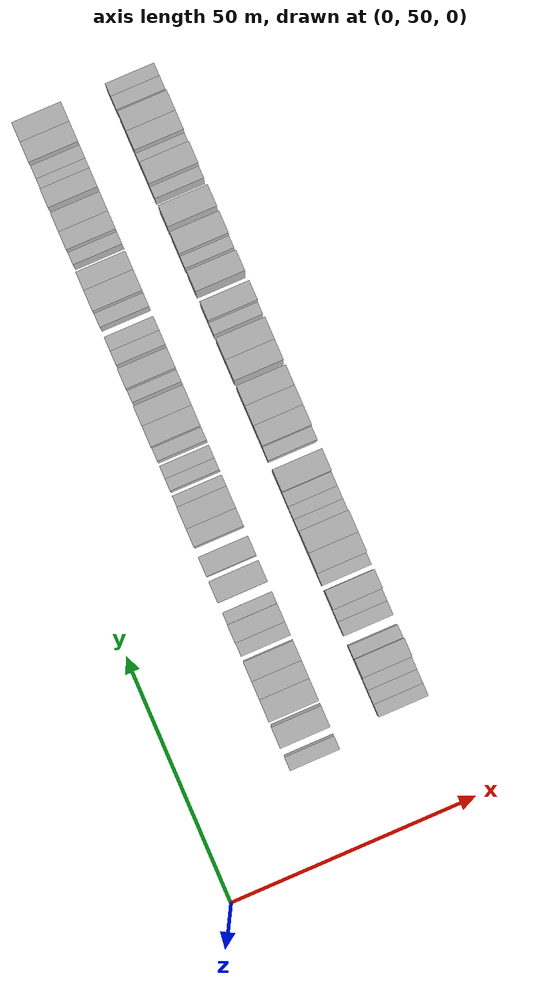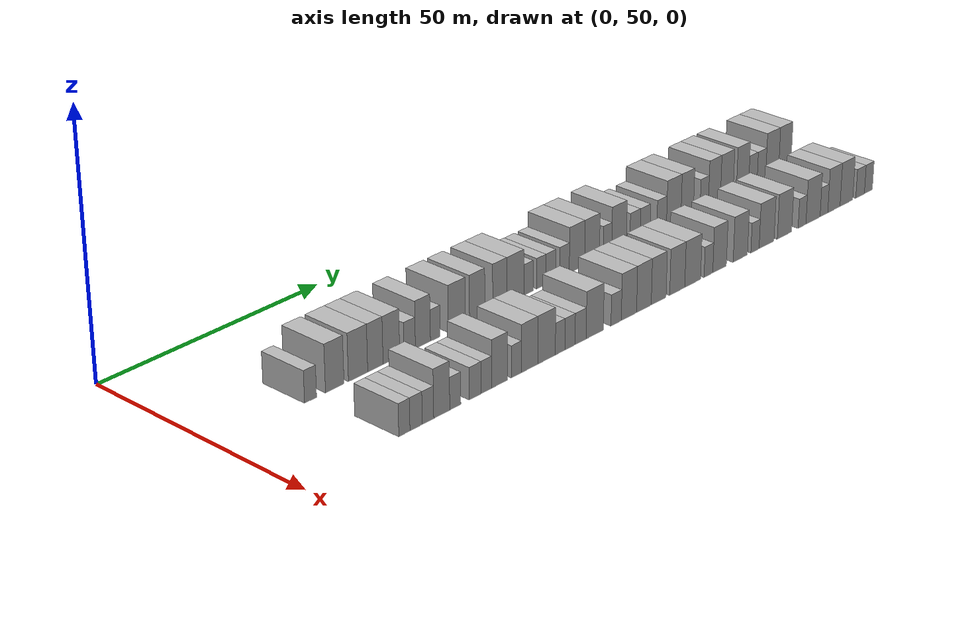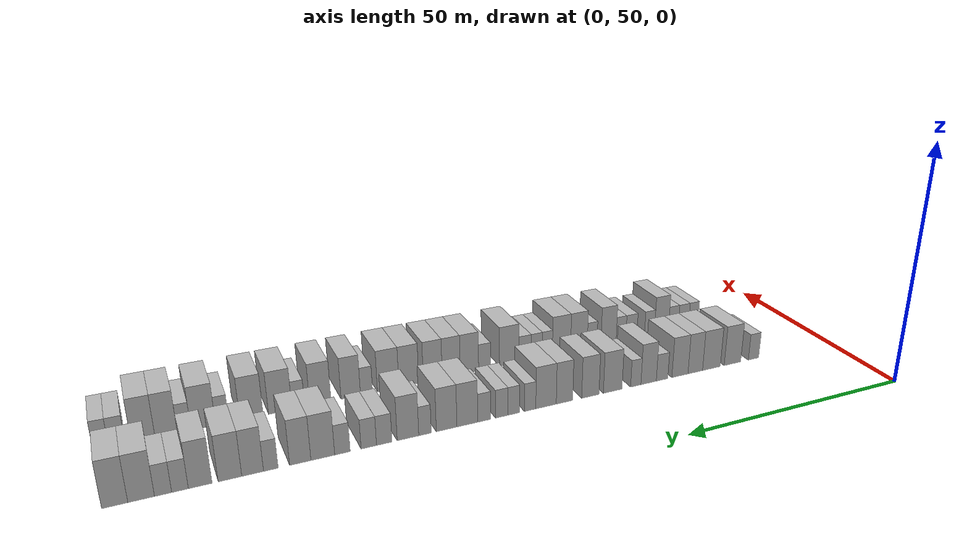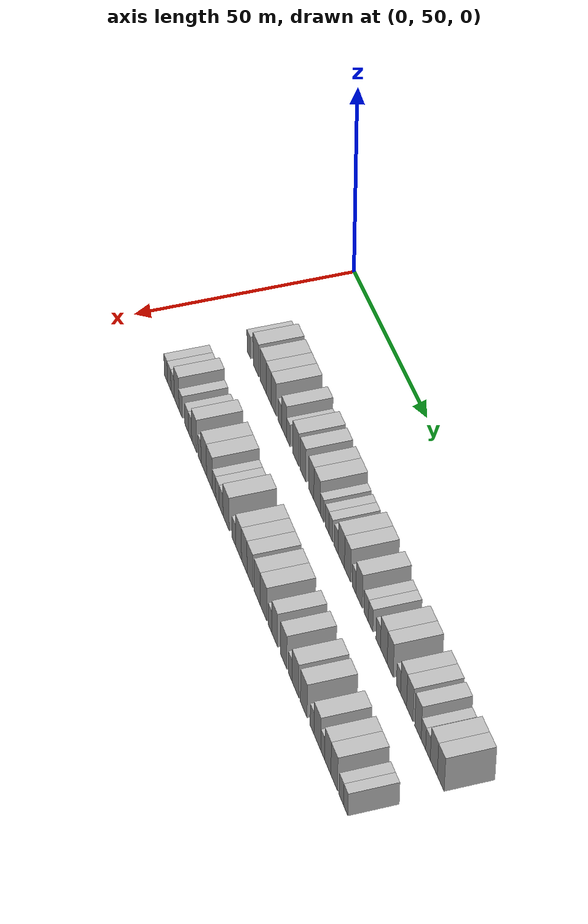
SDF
<sdf version="1.6">
 <world name="default">
  <model name="building_66">
   <static>1</static>
   <pose>25.0000 69.9943 0 0.000000 0.000000 0.000000</pose>
   <link name="link">
    <pose>0 0 3.00 0 0 0</pose>
    <collision name="collision"><geometry><box><size>10.0000 2.6918 6.0000</size></box></geometry></collision>
    <visual name="visual">
     <cast_shadows>0</cast_shadows>
     <geometry><box><size>10.0000 2.6918 6.0000</size></box></geometry>
     <material>
      <script>
       <uri>model://HANNAS_wall/materials/scripts</uri>
       <uri>model://HANNAS_wall/materials/textures</uri>
       <name>vrc/HANNAS_wall</name>
      </script>
     </material>
    </visual>
   </link>
  </model>
  <model name="building_67">
   <static>1</static>
   <pose>25.0000 75.4514 0 0.000000 0.000000 0.000000</pose>
   <link name="link">
    <pose>0 0 4.50 0 0 0</pose>
    <collision name="collision"><geometry><box><size>10.0000 4.2224 9.0000</size></box></geometry></collision>
    <visual name="visual">
     <cast_shadows>0</cast_shadows>
     <geometry><box><size>10.0000 4.2224 9.0000</size></box></geometry>
     <material>
      <script>
       <uri>model://HANNAS_wall/materials/scripts</uri>
       <uri>model://HANNAS_wall/materials/textures</uri>
       <name>vrc/HANNAS_wall</name>
      </script>
     </material>
    </visual>
   </link>
  </model>
  <model name="building_68">
   <static>1</static>
   <pose>25.0000 80.7953 0 0.000000 0.000000 0.000000</pose>
   <link name="link">
    <pose>0 0 4.50 0 0 0</pose>
    <collision name="collision"><geometry><box><size>10.0000 4.4655 9.0000</size></box></geometry></collision>
    <visual name="visual">
     <cast_shadows>0</cast_shadows>
     <geometry><box><size>10.0000 4.4655 9.0000</size></box></geometry>
     <material>
      <script>
       <uri>model://HANNAS_wall/materials/scripts</uri>
       <uri>model://HANNAS_wall/materials/textures</uri>
       <name>vrc/HANNAS_wall</name>
      </script>
     </material>
    </visual>
   </link>
  </model>
  <model name="building_69">
   <static>1</static>
   <pose>25.0000 84.8333 0 0.000000 0.000000 0.000000</pose>
   <link name="link">
    <pose>0 0 4.50 0 0 0</pose>
    <collision name="collision"><geometry><box><size>10.0000 3.6105 9.0000</size></box></geometry></collision>
    <visual name="visual">
     <cast_shadows>0</cast_shadows>
     <geometry><box><size>10.0000 3.6105 9.0000</size></box></geometry>
     <material>
      <script>
       <uri>model://HANNAS_wall/materials/scripts</uri>
       <uri>model://HANNAS_wall/materials/textures</uri>
       <name>vrc/HANNAS_wall</name>
      </script>
     </material>
    </visual>
   </link>
  </model>
  <model name="building_70">
   <static>1</static>
   <pose>25.0000 88.6045 0 0.000000 0.000000 0.000000</pose>
   <link name="link">
    <pose>0 0 4.50 0 0 0</pose>
    <collision name="collision"><geometry><box><size>10.0000 3.9318 9.0000</size></box></geometry></collision>
    <visual name="visual">
     <cast_shadows>0</cast_shadows>
     <geometry><box><size>10.0000 3.9318 9.0000</size></box></geometry>
     <material>
      <script>
       <uri>model://HANNAS_wall/materials/scripts</uri>
       <uri>model://HANNAS_wall/materials/textures</uri>
       <name>vrc/HANNAS_wall</name>
      </script>
     </material>
    </visual>
   </link>
  </model>
  <model name="building_71">
   <static>1</static>
   <pose>25.0000 92.9496 0 0.000000 0.000000 0.000000</pose>
   <link name="link">
    <pose>0 0 3.00 0 0 0</pose>
    <collision name="collision"><geometry><box><size>10.0000 2.7585 6.0000</size></box></geometry></collision>
    <visual name="visual">
     <cast_shadows>0</cast_shadows>
     <geometry><box><size>10.0000 2.7585 6.0000</size></box></geometry>
     <material>
      <script>
       <uri>model://HANNAS_wall/materials/scripts</uri>
       <uri>model://HANNAS_wall/materials/textures</uri>
       <name>vrc/HANNAS_wall</name>
      </script>
     </material>
    </visual>
   </link>
  </model>
  <model name="building_72">
   <static>1</static>
   <pose>25.0000 96.1556 0 0.000000 0.000000 0.000000</pose>
   <link name="link">
    <pose>0 0 4.50 0 0 0</pose>
    <collision name="collision"><geometry><box><size>10.0000 3.6536 9.0000</size></box></geometry></collision>
    <visual name="visual">
     <cast_shadows>0</cast_shadows>
     <geometry><box><size>10.0000 3.6536 9.0000</size></box></geometry>
     <material>
      <script>
       <uri>model://HANNAS_wall/materials/scripts</uri>
       <uri>model://HANNAS_wall/materials/textures</uri>
       <name>vrc/HANNAS_wall</name>
      </script>
     </material>
    </visual>
   </link>
  </model>
  <model name="building_73">
   <static>1</static>
   <pose>25.0000 99.1852 0 0.000000 0.000000 0.000000</pose>
   <link name="link">
    <pose>0 0 3.00 0 0 0</pose>
    <collision name="collision"><geometry><box><size>10.0000 2.4054 6.0000</size></box></geometry></collision>
    <visual name="visual">
     <cast_shadows>0</cast_shadows>
     <geometry><box><size>10.0000 2.4054 6.0000</size></box></geometry>
     <material>
      <script>
       <uri>model://HANNAS_wall/materials/scripts</uri>
       <uri>model://HANNAS_wall/materials/textures</uri>
       <name>vrc/HANNAS_wall</name>
      </script>
     </material>
    </visual>
   </link>
  </model>
  <model name="building_74">
   <static>1</static>
   <pose>25.0000 104.5269 0 0.000000 0.000000 0.000000</pose>
   <link name="link">
    <pose>0 0 4.50 0 0 0</pose>
    <collision name="collision"><geometry><box><size>10.0000 4.2781 9.0000</size></box></geometry></collision>
    <visual name="visual">
     <cast_shadows>0</cast_shadows>
     <geometry><box><size>10.0000 4.2781 9.0000</size></box></geometry>
     <material>
      <script>
       <uri>model://HANNAS_wall/materials/scripts</uri>
       <uri>model://HANNAS_wall/materials/textures</uri>
       <name>vrc/HANNAS_wall</name>
      </script>
     </material>
    </visual>
   </link>
  </model>
  <model name="building_75">
   <static>1</static>
   <pose>25.0000 109.6115 0 0.000000 0.000000 0.000000</pose>
   <link name="link">
    <pose>0 0 4.50 0 0 0</pose>
    <collision name="collision"><geometry><box><size>10.0000 3.8910 9.0000</size></box></geometry></collision>
    <visual name="visual">
     <cast_shadows>0</cast_shadows>
     <geometry><box><size>10.0000 3.8910 9.0000</size></box></geometry>
     <material>
      <script>
       <uri>model://HANNAS_wall/materials/scripts</uri>
       <uri>model://HANNAS_wall/materials/textures</uri>
       <name>vrc/HANNAS_wall</name>
      </script>
     </material>
    </visual>
   </link>
  </model>
  <model name="building_76">
   <static>1</static>
   <pose>25.0000 115.3687 0 0.000000 0.000000 0.000000</pose>
   <link name="link">
    <pose>0 0 4.50 0 0 0</pose>
    <collision name="collision"><geometry><box><size>10.0000 3.6234 9.0000</size></box></geometry></collision>
    <visual name="visual">
     <cast_shadows>0</cast_shadows>
     <geometry><box><size>10.0000 3.6234 9.0000</size></box></geometry>
     <material>
      <script>
       <uri>model://HANNAS_wall/materials/scripts</uri>
       <uri>model://HANNAS_wall/materials/textures</uri>
       <name>vrc/HANNAS_wall</name>
      </script>
     </material>
    </visual>
   </link>
  </model>
  <model name="building_77">
   <static>1</static>
   <pose>25.0000 119.3893 0 0.000000 0.000000 0.000000</pose>
   <link name="link">
    <pose>0 0 4.50 0 0 0</pose>
    <collision name="collision"><geometry><box><size>10.0000 4.4178 9.0000</size></box></geometry></collision>
    <visual name="visual">
     <cast_shadows>0</cast_shadows>
     <geometry><box><size>10.0000 4.4178 9.0000</size></box></geometry>
     <material>
      <script>
       <uri>model://HANNAS_wall/materials/scripts</uri>
       <uri>model://HANNAS_wall/materials/textures</uri>
       <name>vrc/HANNAS_wall</name>
      </script>
     </material>
    </visual>
   </link>
  </model>
  <model name="building_78">
   <static>1</static>
   <pose>25.0000 122.8151 0 0.000000 0.000000 0.000000</pose>
   <link name="link">
    <pose>0 0 3.00 0 0 0</pose>
    <collision name="collision"><geometry><box><size>10.0000 2.4338 6.0000</size></box></geometry></collision>
    <visual name="visual">
     <cast_shadows>0</cast_shadows>
     <geometry><box><size>10.0000 2.4338 6.0000</size></box></geometry>
     <material>
      <script>
       <uri>model://HANNAS_wall/materials/scripts</uri>
       <uri>model://HANNAS_wall/materials/textures</uri>
       <name>vrc/HANNAS_wall</name>
      </script>
     </material>
    </visual>
   </link>
  </model>
  <model name="building_79">
   <static>1</static>
   <pose>25.0000 126.2478 0 0.000000 0.000000 0.000000</pose>
   <link name="link">
    <pose>0 0 3.00 0 0 0</pose>
    <collision name="collision"><geometry><box><size>10.0000 2.4316 6.0000</size></box></geometry></collision>
    <visual name="visual">
     <cast_shadows>0</cast_shadows>
     <geometry><box><size>10.0000 2.4316 6.0000</size></box></geometry>
     <material>
      <script>
       <uri>model://HANNAS_wall/materials/scripts</uri>
       <uri>model://HANNAS_wall/materials/textures</uri>
       <name>vrc/HANNAS_wall</name>
      </script>
     </material>
    </visual>
   </link>
  </model>
  <model name="building_80">
   <static>1</static>
   <pose>25.0000 128.7735 0 0.000000 0.000000 0.000000</pose>
   <link name="link">
    <pose>0 0 3.00 0 0 0</pose>
    <collision name="collision"><geometry><box><size>10.0000 2.6198 6.0000</size></box></geometry></collision>
    <visual name="visual">
     <cast_shadows>0</cast_shadows>
     <geometry><box><size>10.0000 2.6198 6.0000</size></box></geometry>
     <material>
      <script>
       <uri>model://HANNAS_wall/materials/scripts</uri>
       <uri>model://HANNAS_wall/materials/textures</uri>
       <name>vrc/HANNAS_wall</name>
      </script>
     </material>
    </visual>
   </link>
  </model>
  <model name="building_81">
   <static>1</static>
   <pose>25.0000 132.4123 0 0.000000 0.000000 0.000000</pose>
   <link name="link">
    <pose>0 0 3.00 0 0 0</pose>
    <collision name="collision"><geometry><box><size>10.0000 2.6578 6.0000</size></box></geometry></collision>
    <visual name="visual">
     <cast_shadows>0</cast_shadows>
     <geometry><box><size>10.0000 2.6578 6.0000</size></box></geometry>
     <material>
      <script>
       <uri>model://HANNAS_wall/materials/scripts</uri>
       <uri>model://HANNAS_wall/materials/textures</uri>
       <name>vrc/HANNAS_wall</name>
      </script>
     </material>
    </visual>
   </link>
  </model>
  <model name="building_82">
   <static>1</static>
   <pose>25.0000 135.8461 0 0.000000 0.000000 0.000000</pose>
   <link name="link">
    <pose>0 0 4.50 0 0 0</pose>
    <collision name="collision"><geometry><box><size>10.0000 4.2099 9.0000</size></box></geometry></collision>
    <visual name="visual">
     <cast_shadows>0</cast_shadows>
     <geometry><box><size>10.0000 4.2099 9.0000</size></box></geometry>
     <material>
      <script>
       <uri>model://HANNAS_wall/materials/scripts</uri>
       <uri>model://HANNAS_wall/materials/textures</uri>
       <name>vrc/HANNAS_wall</name>
      </script>
     </material>
    </visual>
   </link>
  </model>
  <model name="building_83">
   <static>1</static>
   <pose>25.0000 139.9938 0 0.000000 0.000000 0.000000</pose>
   <link name="link">
    <pose>0 0 4.50 0 0 0</pose>
    <collision name="collision"><geometry><box><size>10.0000 4.0855 9.0000</size></box></geometry></collision>
    <visual name="visual">
     <cast_shadows>0</cast_shadows>
     <geometry><box><size>10.0000 4.0855 9.0000</size></box></geometry>
     <material>
      <script>
       <uri>model://HANNAS_wall/materials/scripts</uri>
       <uri>model://HANNAS_wall/materials/textures</uri>
       <name>vrc/HANNAS_wall</name>
      </script>
     </material>
    </visual>
   </link>
  </model>
  <model name="building_84">
   <static>1</static>
   <pose>25.0000 144.2521 0 0.000000 0.000000 0.000000</pose>
   <link name="link">
    <pose>0 0 3.00 0 0 0</pose>
    <collision name="collision"><geometry><box><size>10.0000 2.4310 6.0000</size></box></geometry></collision>
    <visual name="visual">
     <cast_shadows>0</cast_shadows>
     <geometry><box><size>10.0000 2.4310 6.0000</size></box></geometry>
     <material>
      <script>
       <uri>model://HANNAS_wall/materials/scripts</uri>
       <uri>model://HANNAS_wall/materials/textures</uri>
       <name>vrc/HANNAS_wall</name>
      </script>
     </material>
    </visual>
   </link>
  </model>
  <model name="building_85">
   <static>1</static>
   <pose>25.0000 147.5403 0 0.000000 0.000000 0.000000</pose>
   <link name="link">
    <pose>0 0 4.50 0 0 0</pose>
    <collision name="collision"><geometry><box><size>10.0000 4.1455 9.0000</size></box></geometry></collision>
    <visual name="visual">
     <cast_shadows>0</cast_shadows>
     <geometry><box><size>10.0000 4.1455 9.0000</size></box></geometry>
     <material>
      <script>
       <uri>model://HANNAS_wall/materials/scripts</uri>
       <uri>model://HANNAS_wall/materials/textures</uri>
       <name>vrc/HANNAS_wall</name>
      </script>
     </material>
    </visual>
   </link>
  </model>
  <model name="building_86">
   <static>1</static>
   <pose>25.0000 152.0707 0 0.000000 0.000000 0.000000</pose>
   <link name="link">
    <pose>0 0 3.00 0 0 0</pose>
    <collision name="collision"><geometry><box><size>10.0000 2.9153 6.0000</size></box></geometry></collision>
    <visual name="visual">
     <cast_shadows>0</cast_shadows>
     <geometry><box><size>10.0000 2.9153 6.0000</size></box></geometry>
     <material>
      <script>
       <uri>model://HANNAS_wall/materials/scripts</uri>
       <uri>model://HANNAS_wall/materials/textures</uri>
       <name>vrc/HANNAS_wall</name>
      </script>
     </material>
    </visual>
   </link>
  </model>
  <model name="building_87">
   <static>1</static>
   <pose>25.0000 154.9612 0 0.000000 0.000000 0.000000</pose>
   <link name="link">
    <pose>0 0 3.00 0 0 0</pose>
    <collision name="collision"><geometry><box><size>10.0000 2.8655 6.0000</size></box></geometry></collision>
    <visual name="visual">
     <cast_shadows>0</cast_shadows>
     <geometry><box><size>10.0000 2.8655 6.0000</size></box></geometry>
     <material>
      <script>
       <uri>model://HANNAS_wall/materials/scripts</uri>
       <uri>model://HANNAS_wall/materials/textures</uri>
       <name>vrc/HANNAS_wall</name>
      </script>
     </material>
    </visual>
   </link>
  </model>
  <model name="building_88">
   <static>1</static>
   <pose>25.0000 159.8043 0 0.000000 0.000000 0.000000</pose>
   <link name="link">
    <pose>0 0 3.00 0 0 0</pose>
    <collision name="collision"><geometry><box><size>10.0000 2.8207 6.0000</size></box></geometry></collision>
    <visual name="visual">
     <cast_shadows>0</cast_shadows>
     <geometry><box><size>10.0000 2.8207 6.0000</size></box></geometry>
     <material>
      <script>
       <uri>model://HANNAS_wall/materials/scripts</uri>
       <uri>model://HANNAS_wall/materials/textures</uri>
       <name>vrc/HANNAS_wall</name>
      </script>
     </material>
    </visual>
   </link>
  </model>
  <model name="building_89">
   <static>1</static>
   <pose>25.0000 163.3486 0 0.000000 0.000000 0.000000</pose>
   <link name="link">
    <pose>0 0 4.50 0 0 0</pose>
    <collision name="collision"><geometry><box><size>10.0000 4.2679 9.0000</size></box></geometry></collision>
    <visual name="visual">
     <cast_shadows>0</cast_shadows>
     <geometry><box><size>10.0000 4.2679 9.0000</size></box></geometry>
     <material>
      <script>
       <uri>model://HANNAS_wall/materials/scripts</uri>
       <uri>model://HANNAS_wall/materials/textures</uri>
       <name>vrc/HANNAS_wall</name>
      </script>
     </material>
    </visual>
   </link>
  </model>
  <model name="building_90">
   <static>1</static>
   <pose>25.0000 167.3554 0 0.000000 0.000000 0.000000</pose>
   <link name="link">
    <pose>0 0 4.50 0 0 0</pose>
    <collision name="collision"><geometry><box><size>10.0000 3.7457 9.0000</size></box></geometry></collision>
    <visual name="visual">
     <cast_shadows>0</cast_shadows>
     <geometry><box><size>10.0000 3.7457 9.0000</size></box></geometry>
     <material>
      <script>
       <uri>model://HANNAS_wall/materials/scripts</uri>
       <uri>model://HANNAS_wall/materials/textures</uri>
       <name>vrc/HANNAS_wall</name>
      </script>
     </material>
    </visual>
   </link>
  </model>
  <model name="building_91">
   <static>1</static>
   <pose>25.0000 172.4858 0 0.000000 0.000000 0.000000</pose>
   <link name="link">
    <pose>0 0 3.00 0 0 0</pose>
    <collision name="collision"><geometry><box><size>10.0000 2.5150 6.0000</size></box></geometry></collision>
    <visual name="visual">
     <cast_shadows>0</cast_shadows>
     <geometry><box><size>10.0000 2.5150 6.0000</size></box></geometry>
     <material>
      <script>
       <uri>model://HANNAS_wall/materials/scripts</uri>
       <uri>model://HANNAS_wall/materials/textures</uri>
       <name>vrc/HANNAS_wall</name>
      </script>
     </material>
    </visual>
   </link>
  </model>
  <model name="building_92">
   <static>1</static>
   <pose>25.0000 175.5872 0 0.000000 0.000000 0.000000</pose>
   <link name="link">
    <pose>0 0 4.50 0 0 0</pose>
    <collision name="collision"><geometry><box><size>10.0000 3.6880 9.0000</size></box></geometry></collision>
    <visual name="visual">
     <cast_shadows>0</cast_shadows>
     <geometry><box><size>10.0000 3.6880 9.0000</size></box></geometry>
     <material>
      <script>
       <uri>model://HANNAS_wall/materials/scripts</uri>
       <uri>model://HANNAS_wall/materials/textures</uri>
       <name>vrc/HANNAS_wall</name>
      </script>
     </material>
    </visual>
   </link>
  </model>
  <model name="building_93">
   <static>1</static>
   <pose>25.0000 179.4015 0 0.000000 0.000000 0.000000</pose>
   <link name="link">
    <pose>0 0 4.50 0 0 0</pose>
    <collision name="collision"><geometry><box><size>10.0000 3.9405 9.0000</size></box></geometry></collision>
    <visual name="visual">
     <cast_shadows>0</cast_shadows>
     <geometry><box><size>10.0000 3.9405 9.0000</size></box></geometry>
     <material>
      <script>
       <uri>model://HANNAS_wall/materials/scripts</uri>
       <uri>model://HANNAS_wall/materials/textures</uri>
       <name>vrc/HANNAS_wall</name>
      </script>
     </material>
    </visual>
   </link>
  </model>
  <model name="building_94">
   <static>1</static>
   <pose>25.0000 184.3052 0 0.000000 0.000000 0.000000</pose>
   <link name="link">
    <pose>0 0 4.50 0 0 0</pose>
    <collision name="collision"><geometry><box><size>10.0000 3.8670 9.0000</size></box></geometry></collision>
    <visual name="visual">
     <cast_shadows>0</cast_shadows>
     <geometry><box><size>10.0000 3.8670 9.0000</size></box></geometry>
     <material>
      <script>
       <uri>model://HANNAS_wall/materials/scripts</uri>
       <uri>model://HANNAS_wall/materials/textures</uri>
       <name>vrc/HANNAS_wall</name>
      </script>
     </material>
    </visual>
   </link>
  </model>
  <model name="building_95">
   <static>1</static>
   <pose>25.0000 187.5746 0 0.000000 0.000000 0.000000</pose>
   <link name="link">
    <pose>0 0 3.00 0 0 0</pose>
    <collision name="collision"><geometry><box><size>10.0000 2.6718 6.0000</size></box></geometry></collision>
    <visual name="visual">
     <cast_shadows>0</cast_shadows>
     <geometry><box><size>10.0000 2.6718 6.0000</size></box></geometry>
     <material>
      <script>
       <uri>model://HANNAS_wall/materials/scripts</uri>
       <uri>model://HANNAS_wall/materials/textures</uri>
       <name>vrc/HANNAS_wall</name>
      </script>
     </material>
    </visual>
   </link>
  </model>
  <model name="building_96">
   <static>1</static>
   <pose>25.0000 190.2714 0 0.000000 0.000000 0.000000</pose>
   <link name="link">
    <pose>0 0 3.00 0 0 0</pose>
    <collision name="collision"><geometry><box><size>10.0000 2.7217 6.0000</size></box></geometry></collision>
    <visual name="visual">
     <cast_shadows>0</cast_shadows>
     <geometry><box><size>10.0000 2.7217 6.0000</size></box></geometry>
     <material>
      <script>
       <uri>model://HANNAS_wall/materials/scripts</uri>
       <uri>model://HANNAS_wall/materials/textures</uri>
       <name>vrc/HANNAS_wall</name>
      </script>
     </material>
    </visual>
   </link>
  </model>
  <model name="building_97">
   <static>1</static>
   <pose>25.0000 193.7110 0 0.000000 0.000000 0.000000</pose>
   <link name="link">
    <pose>0 0 4.50 0 0 0</pose>
    <collision name="collision"><geometry><box><size>10.0000 4.1576 9.0000</size></box></geometry></collision>
    <visual name="visual">
     <cast_shadows>0</cast_shadows>
     <geometry><box><size>10.0000 4.1576 9.0000</size></box></geometry>
     <material>
      <script>
       <uri>model://HANNAS_wall/materials/scripts</uri>
       <uri>model://HANNAS_wall/materials/textures</uri>
       <name>vrc/HANNAS_wall</name>
      </script>
     </material>
    </visual>
   </link>
  </model>
  <model name="building_98">
   <static>1</static>
   <pose>25.0000 197.7957 0 0.000000 0.000000 0.000000</pose>
   <link name="link">
    <pose>0 0 4.50 0 0 0</pose>
    <collision name="collision"><geometry><box><size>10.0000 4.0117 9.0000</size></box></geometry></collision>
    <visual name="visual">
     <cast_shadows>0</cast_shadows>
     <geometry><box><size>10.0000 4.0117 9.0000</size></box></geometry>
     <material>
      <script>
       <uri>model://HANNAS_wall/materials/scripts</uri>
       <uri>model://HANNAS_wall/materials/textures</uri>
       <name>vrc/HANNAS_wall</name>
      </script>
     </material>
    </visual>
   </link>
  </model>
  <model name="building_167">
   <static>1</static>
   <pose>44.0000 72.4656 0 0.000000 0.000000 0.000000</pose>
   <link name="link">
    <pose>0 0 3.00 0 0 0</pose>
    <collision name="collision"><geometry><box><size>10.0000 2.5185 6.0000</size></box></geometry></collision>
    <visual name="visual">
     <cast_shadows>0</cast_shadows>
     <geometry><box><size>10.0000 2.5185 6.0000</size></box></geometry>
     <material>
      <script>
       <uri>model://HANNAS_wall/materials/scripts</uri>
       <uri>model://HANNAS_wall/materials/textures</uri>
       <name>vrc/HANNAS_wall</name>
      </script>
     </material>
    </visual>
   </link>
  </model>
  <model name="building_168">
   <static>1</static>
   <pose>44.0000 75.1305 0 0.000000 0.000000 0.000000</pose>
   <link name="link">
    <pose>0 0 3.00 0 0 0</pose>
    <collision name="collision"><geometry><box><size>10.0000 2.8113 6.0000</size></box></geometry></collision>
    <visual name="visual">
     <cast_shadows>0</cast_shadows>
     <geometry><box><size>10.0000 2.8113 6.0000</size></box></geometry>
     <material>
      <script>
       <uri>model://HANNAS_wall/materials/scripts</uri>
       <uri>model://HANNAS_wall/materials/textures</uri>
       <name>vrc/HANNAS_wall</name>
      </script>
     </material>
    </visual>
   </link>
  </model>
  <model name="building_169">
   <static>1</static>
   <pose>44.0000 77.8477 0 0.000000 0.000000 0.000000</pose>
   <link name="link">
    <pose>0 0 3.00 0 0 0</pose>
    <collision name="collision"><geometry><box><size>10.0000 2.6231 6.0000</size></box></geometry></collision>
    <visual name="visual">
     <cast_shadows>0</cast_shadows>
     <geometry><box><size>10.0000 2.6231 6.0000</size></box></geometry>
     <material>
      <script>
       <uri>model://HANNAS_wall/materials/scripts</uri>
       <uri>model://HANNAS_wall/materials/textures</uri>
       <name>vrc/HANNAS_wall</name>
      </script>
     </material>
    </visual>
   </link>
  </model>
  <model name="building_170">
   <static>1</static>
   <pose>44.0000 81.0233 0 0.000000 0.000000 0.000000</pose>
   <link name="link">
    <pose>0 0 4.50 0 0 0</pose>
    <collision name="collision"><geometry><box><size>10.0000 3.7281 9.0000</size></box></geometry></collision>
    <visual name="visual">
     <cast_shadows>0</cast_shadows>
     <geometry><box><size>10.0000 3.7281 9.0000</size></box></geometry>
     <material>
      <script>
       <uri>model://HANNAS_wall/materials/scripts</uri>
       <uri>model://HANNAS_wall/materials/textures</uri>
       <name>vrc/HANNAS_wall</name>
      </script>
     </material>
    </visual>
   </link>
  </model>
  <model name="building_171">
   <static>1</static>
   <pose>44.0000 84.1872 0 0.000000 0.000000 0.000000</pose>
   <link name="link">
    <pose>0 0 3.00 0 0 0</pose>
    <collision name="collision"><geometry><box><size>10.0000 2.5997 6.0000</size></box></geometry></collision>
    <visual name="visual">
     <cast_shadows>0</cast_shadows>
     <geometry><box><size>10.0000 2.5997 6.0000</size></box></geometry>
     <material>
      <script>
       <uri>model://HANNAS_wall/materials/scripts</uri>
       <uri>model://HANNAS_wall/materials/textures</uri>
       <name>vrc/HANNAS_wall</name>
      </script>
     </material>
    </visual>
   </link>
  </model>
  <model name="building_172">
   <static>1</static>
   <pose>44.0000 88.9062 0 0.000000 0.000000 0.000000</pose>
   <link name="link">
    <pose>0 0 3.00 0 0 0</pose>
    <collision name="collision"><geometry><box><size>10.0000 2.8384 6.0000</size></box></geometry></collision>
    <visual name="visual">
     <cast_shadows>0</cast_shadows>
     <geometry><box><size>10.0000 2.8384 6.0000</size></box></geometry>
     <material>
      <script>
       <uri>model://HANNAS_wall/materials/scripts</uri>
       <uri>model://HANNAS_wall/materials/textures</uri>
       <name>vrc/HANNAS_wall</name>
      </script>
     </material>
    </visual>
   </link>
  </model>
  <model name="building_173">
   <static>1</static>
   <pose>44.0000 91.5718 0 0.000000 0.000000 0.000000</pose>
   <link name="link">
    <pose>0 0 3.00 0 0 0</pose>
    <collision name="collision"><geometry><box><size>10.0000 2.4927 6.0000</size></box></geometry></collision>
    <visual name="visual">
     <cast_shadows>0</cast_shadows>
     <geometry><box><size>10.0000 2.4927 6.0000</size></box></geometry>
     <material>
      <script>
       <uri>model://HANNAS_wall/materials/scripts</uri>
       <uri>model://HANNAS_wall/materials/textures</uri>
       <name>vrc/HANNAS_wall</name>
      </script>
     </material>
    </visual>
   </link>
  </model>
  <model name="building_174">
   <static>1</static>
   <pose>44.0000 94.7333 0 0.000000 0.000000 0.000000</pose>
   <link name="link">
    <pose>0 0 4.50 0 0 0</pose>
    <collision name="collision"><geometry><box><size>10.0000 3.8304 9.0000</size></box></geometry></collision>
    <visual name="visual">
     <cast_shadows>0</cast_shadows>
     <geometry><box><size>10.0000 3.8304 9.0000</size></box></geometry>
     <material>
      <script>
       <uri>model://HANNAS_wall/materials/scripts</uri>
       <uri>model://HANNAS_wall/materials/textures</uri>
       <name>vrc/HANNAS_wall</name>
      </script>
     </material>
    </visual>
   </link>
  </model>
  <model name="building_175">
   <static>1</static>
   <pose>44.0000 98.8596 0 0.000000 0.000000 0.000000</pose>
   <link name="link">
    <pose>0 0 3.00 0 0 0</pose>
    <collision name="collision"><geometry><box><size>10.0000 2.4222 6.0000</size></box></geometry></collision>
    <visual name="visual">
     <cast_shadows>0</cast_shadows>
     <geometry><box><size>10.0000 2.4222 6.0000</size></box></geometry>
     <material>
      <script>
       <uri>model://HANNAS_wall/materials/scripts</uri>
       <uri>model://HANNAS_wall/materials/textures</uri>
       <name>vrc/HANNAS_wall</name>
      </script>
     </material>
    </visual>
   </link>
  </model>
  <model name="building_176">
   <static>1</static>
   <pose>44.0000 102.1173 0 0.000000 0.000000 0.000000</pose>
   <link name="link">
    <pose>0 0 4.50 0 0 0</pose>
    <collision name="collision"><geometry><box><size>10.0000 4.0933 9.0000</size></box></geometry></collision>
    <visual name="visual">
     <cast_shadows>0</cast_shadows>
     <geometry><box><size>10.0000 4.0933 9.0000</size></box></geometry>
     <material>
      <script>
       <uri>model://HANNAS_wall/materials/scripts</uri>
       <uri>model://HANNAS_wall/materials/textures</uri>
       <name>vrc/HANNAS_wall</name>
      </script>
     </material>
    </visual>
   </link>
  </model>
  <model name="building_177">
   <static>1</static>
   <pose>44.0000 106.3735 0 0.000000 0.000000 0.000000</pose>
   <link name="link">
    <pose>0 0 4.50 0 0 0</pose>
    <collision name="collision"><geometry><box><size>10.0000 4.4191 9.0000</size></box></geometry></collision>
    <visual name="visual">
     <cast_shadows>0</cast_shadows>
     <geometry><box><size>10.0000 4.4191 9.0000</size></box></geometry>
     <material>
      <script>
       <uri>model://HANNAS_wall/materials/scripts</uri>
       <uri>model://HANNAS_wall/materials/textures</uri>
       <name>vrc/HANNAS_wall</name>
      </script>
     </material>
    </visual>
   </link>
  </model>
  <model name="building_178">
   <static>1</static>
   <pose>44.0000 109.7889 0 0.000000 0.000000 0.000000</pose>
   <link name="link">
    <pose>0 0 3.00 0 0 0</pose>
    <collision name="collision"><geometry><box><size>10.0000 2.4117 6.0000</size></box></geometry></collision>
    <visual name="visual">
     <cast_shadows>0</cast_shadows>
     <geometry><box><size>10.0000 2.4117 6.0000</size></box></geometry>
     <material>
      <script>
       <uri>model://HANNAS_wall/materials/scripts</uri>
       <uri>model://HANNAS_wall/materials/textures</uri>
       <name>vrc/HANNAS_wall</name>
      </script>
     </material>
    </visual>
   </link>
  </model>
  <model name="building_179">
   <static>1</static>
   <pose>44.0000 112.3052 0 0.000000 0.000000 0.000000</pose>
   <link name="link">
    <pose>0 0 3.00 0 0 0</pose>
    <collision name="collision"><geometry><box><size>10.0000 2.6210 6.0000</size></box></geometry></collision>
    <visual name="visual">
     <cast_shadows>0</cast_shadows>
     <geometry><box><size>10.0000 2.6210 6.0000</size></box></geometry>
     <material>
      <script>
       <uri>model://HANNAS_wall/materials/scripts</uri>
       <uri>model://HANNAS_wall/materials/textures</uri>
       <name>vrc/HANNAS_wall</name>
      </script>
     </material>
    </visual>
   </link>
  </model>
  <model name="building_180">
   <static>1</static>
   <pose>44.0000 115.0538 0 0.000000 0.000000 0.000000</pose>
   <link name="link">
    <pose>0 0 3.00 0 0 0</pose>
    <collision name="collision"><geometry><box><size>10.0000 2.8763 6.0000</size></box></geometry></collision>
    <visual name="visual">
     <cast_shadows>0</cast_shadows>
     <geometry><box><size>10.0000 2.8763 6.0000</size></box></geometry>
     <material>
      <script>
       <uri>model://HANNAS_wall/materials/scripts</uri>
       <uri>model://HANNAS_wall/materials/textures</uri>
       <name>vrc/HANNAS_wall</name>
      </script>
     </material>
    </visual>
   </link>
  </model>
  <model name="building_181">
   <static>1</static>
   <pose>44.0000 118.7380 0 0.000000 0.000000 0.000000</pose>
   <link name="link">
    <pose>0 0 4.50 0 0 0</pose>
    <collision name="collision"><geometry><box><size>10.0000 4.4922 9.0000</size></box></geometry></collision>
    <visual name="visual">
     <cast_shadows>0</cast_shadows>
     <geometry><box><size>10.0000 4.4922 9.0000</size></box></geometry>
     <material>
      <script>
       <uri>model://HANNAS_wall/materials/scripts</uri>
       <uri>model://HANNAS_wall/materials/textures</uri>
       <name>vrc/HANNAS_wall</name>
      </script>
     </material>
    </visual>
   </link>
  </model>
  <model name="building_182">
   <static>1</static>
   <pose>44.0000 124.3640 0 0.000000 0.000000 0.000000</pose>
   <link name="link">
    <pose>0 0 3.00 0 0 0</pose>
    <collision name="collision"><geometry><box><size>10.0000 2.7597 6.0000</size></box></geometry></collision>
    <visual name="visual">
     <cast_shadows>0</cast_shadows>
     <geometry><box><size>10.0000 2.7597 6.0000</size></box></geometry>
     <material>
      <script>
       <uri>model://HANNAS_wall/materials/scripts</uri>
       <uri>model://HANNAS_wall/materials/textures</uri>
       <name>vrc/HANNAS_wall</name>
      </script>
     </material>
    </visual>
   </link>
  </model>
  <model name="building_183">
   <static>1</static>
   <pose>44.0000 127.7962 0 0.000000 0.000000 0.000000</pose>
   <link name="link">
    <pose>0 0 4.50 0 0 0</pose>
    <collision name="collision"><geometry><box><size>10.0000 4.1047 9.0000</size></box></geometry></collision>
    <visual name="visual">
     <cast_shadows>0</cast_shadows>
     <geometry><box><size>10.0000 4.1047 9.0000</size></box></geometry>
     <material>
      <script>
       <uri>model://HANNAS_wall/materials/scripts</uri>
       <uri>model://HANNAS_wall/materials/textures</uri>
       <name>vrc/HANNAS_wall</name>
      </script>
     </material>
    </visual>
   </link>
  </model>
  <model name="building_184">
   <static>1</static>
   <pose>44.0000 131.8458 0 0.000000 0.000000 0.000000</pose>
   <link name="link">
    <pose>0 0 4.50 0 0 0</pose>
    <collision name="collision"><geometry><box><size>10.0000 3.9945 9.0000</size></box></geometry></collision>
    <visual name="visual">
     <cast_shadows>0</cast_shadows>
     <geometry><box><size>10.0000 3.9945 9.0000</size></box></geometry>
     <material>
      <script>
       <uri>model://HANNAS_wall/materials/scripts</uri>
       <uri>model://HANNAS_wall/materials/textures</uri>
       <name>vrc/HANNAS_wall</name>
      </script>
     </material>
    </visual>
   </link>
  </model>
  <model name="building_185">
   <static>1</static>
   <pose>44.0000 135.8858 0 0.000000 0.000000 0.000000</pose>
   <link name="link">
    <pose>0 0 4.50 0 0 0</pose>
    <collision name="collision"><geometry><box><size>10.0000 4.0855 9.0000</size></box></geometry></collision>
    <visual name="visual">
     <cast_shadows>0</cast_shadows>
     <geometry><box><size>10.0000 4.0855 9.0000</size></box></geometry>
     <material>
      <script>
       <uri>model://HANNAS_wall/materials/scripts</uri>
       <uri>model://HANNAS_wall/materials/textures</uri>
       <name>vrc/HANNAS_wall</name>
      </script>
     </material>
    </visual>
   </link>
  </model>
  <model name="building_186">
   <static>1</static>
   <pose>44.0000 141.0326 0 0.000000 0.000000 0.000000</pose>
   <link name="link">
    <pose>0 0 4.50 0 0 0</pose>
    <collision name="collision"><geometry><box><size>10.0000 4.2081 9.0000</size></box></geometry></collision>
    <visual name="visual">
     <cast_shadows>0</cast_shadows>
     <geometry><box><size>10.0000 4.2081 9.0000</size></box></geometry>
     <material>
      <script>
       <uri>model://HANNAS_wall/materials/scripts</uri>
       <uri>model://HANNAS_wall/materials/textures</uri>
       <name>vrc/HANNAS_wall</name>
      </script>
     </material>
    </visual>
   </link>
  </model>
  <model name="building_187">
   <static>1</static>
   <pose>44.0000 145.3796 0 0.000000 0.000000 0.000000</pose>
   <link name="link">
    <pose>0 0 4.50 0 0 0</pose>
    <collision name="collision"><geometry><box><size>10.0000 4.4859 9.0000</size></box></geometry></collision>
    <visual name="visual">
     <cast_shadows>0</cast_shadows>
     <geometry><box><size>10.0000 4.4859 9.0000</size></box></geometry>
     <material>
      <script>
       <uri>model://HANNAS_wall/materials/scripts</uri>
       <uri>model://HANNAS_wall/materials/textures</uri>
       <name>vrc/HANNAS_wall</name>
      </script>
     </material>
    </visual>
   </link>
  </model>
  <model name="building_188">
   <static>1</static>
   <pose>44.0000 149.8701 0 0.000000 0.000000 0.000000</pose>
   <link name="link">
    <pose>0 0 3.00 0 0 0</pose>
    <collision name="collision"><geometry><box><size>10.0000 2.4951 6.0000</size></box></geometry></collision>
    <visual name="visual">
     <cast_shadows>0</cast_shadows>
     <geometry><box><size>10.0000 2.4951 6.0000</size></box></geometry>
     <material>
      <script>
       <uri>model://HANNAS_wall/materials/scripts</uri>
       <uri>model://HANNAS_wall/materials/textures</uri>
       <name>vrc/HANNAS_wall</name>
      </script>
     </material>
    </visual>
   </link>
  </model>
  <model name="building_189">
   <static>1</static>
   <pose>44.0000 153.0841 0 0.000000 0.000000 0.000000</pose>
   <link name="link">
    <pose>0 0 4.50 0 0 0</pose>
    <collision name="collision"><geometry><box><size>10.0000 3.9328 9.0000</size></box></geometry></collision>
    <visual name="visual">
     <cast_shadows>0</cast_shadows>
     <geometry><box><size>10.0000 3.9328 9.0000</size></box></geometry>
     <material>
      <script>
       <uri>model://HANNAS_wall/materials/scripts</uri>
       <uri>model://HANNAS_wall/materials/textures</uri>
       <name>vrc/HANNAS_wall</name>
      </script>
     </material>
    </visual>
   </link>
  </model>
  <model name="building_190">
   <static>1</static>
   <pose>44.0000 159.1581 0 0.000000 0.000000 0.000000</pose>
   <link name="link">
    <pose>0 0 4.50 0 0 0</pose>
    <collision name="collision"><geometry><box><size>10.0000 4.2154 9.0000</size></box></geometry></collision>
    <visual name="visual">
     <cast_shadows>0</cast_shadows>
     <geometry><box><size>10.0000 4.2154 9.0000</size></box></geometry>
     <material>
      <script>
       <uri>model://HANNAS_wall/materials/scripts</uri>
       <uri>model://HANNAS_wall/materials/textures</uri>
       <name>vrc/HANNAS_wall</name>
      </script>
     </material>
    </visual>
   </link>
  </model>
  <model name="building_191">
   <static>1</static>
   <pose>44.0000 163.5012 0 0.000000 0.000000 0.000000</pose>
   <link name="link">
    <pose>0 0 3.00 0 0 0</pose>
    <collision name="collision"><geometry><box><size>10.0000 2.4708 6.0000</size></box></geometry></collision>
    <visual name="visual">
     <cast_shadows>0</cast_shadows>
     <geometry><box><size>10.0000 2.4708 6.0000</size></box></geometry>
     <material>
      <script>
       <uri>model://HANNAS_wall/materials/scripts</uri>
       <uri>model://HANNAS_wall/materials/textures</uri>
       <name>vrc/HANNAS_wall</name>
      </script>
     </material>
    </visual>
   </link>
  </model>
  <model name="building_192">
   <static>1</static>
   <pose>44.0000 166.9854 0 0.000000 0.000000 0.000000</pose>
   <link name="link">
    <pose>0 0 4.50 0 0 0</pose>
    <collision name="collision"><geometry><box><size>10.0000 4.4976 9.0000</size></box></geometry></collision>
    <visual name="visual">
     <cast_shadows>0</cast_shadows>
     <geometry><box><size>10.0000 4.4976 9.0000</size></box></geometry>
     <material>
      <script>
       <uri>model://HANNAS_wall/materials/scripts</uri>
       <uri>model://HANNAS_wall/materials/textures</uri>
       <name>vrc/HANNAS_wall</name>
      </script>
     </material>
    </visual>
   </link>
  </model>
  <model name="building_193">
   <static>1</static>
   <pose>44.0000 172.4317 0 0.000000 0.000000 0.000000</pose>
   <link name="link">
    <pose>0 0 4.50 0 0 0</pose>
    <collision name="collision"><geometry><box><size>10.0000 4.3951 9.0000</size></box></geometry></collision>
    <visual name="visual">
     <cast_shadows>0</cast_shadows>
     <geometry><box><size>10.0000 4.3951 9.0000</size></box></geometry>
     <material>
      <script>
       <uri>model://HANNAS_wall/materials/scripts</uri>
       <uri>model://HANNAS_wall/materials/textures</uri>
       <name>vrc/HANNAS_wall</name>
      </script>
     </material>
    </visual>
   </link>
  </model>
  <model name="building_194">
   <static>1</static>
   <pose>44.0000 177.8478 0 0.000000 0.000000 0.000000</pose>
   <link name="link">
    <pose>0 0 3.00 0 0 0</pose>
    <collision name="collision"><geometry><box><size>10.0000 2.4370 6.0000</size></box></geometry></collision>
    <visual name="visual">
     <cast_shadows>0</cast_shadows>
     <geometry><box><size>10.0000 2.4370 6.0000</size></box></geometry>
     <material>
      <script>
       <uri>model://HANNAS_wall/materials/scripts</uri>
       <uri>model://HANNAS_wall/materials/textures</uri>
       <name>vrc/HANNAS_wall</name>
      </script>
     </material>
    </visual>
   </link>
  </model>
  <model name="building_195">
   <static>1</static>
   <pose>44.0000 181.2903 0 0.000000 0.000000 0.000000</pose>
   <link name="link">
    <pose>0 0 4.50 0 0 0</pose>
    <collision name="collision"><geometry><box><size>10.0000 4.4480 9.0000</size></box></geometry></collision>
    <visual name="visual">
     <cast_shadows>0</cast_shadows>
     <geometry><box><size>10.0000 4.4480 9.0000</size></box></geometry>
     <material>
      <script>
       <uri>model://HANNAS_wall/materials/scripts</uri>
       <uri>model://HANNAS_wall/materials/textures</uri>
       <name>vrc/HANNAS_wall</name>
      </script>
     </material>
    </visual>
   </link>
  </model>
  <model name="building_196">
   <static>1</static>
   <pose>44.0000 184.7270 0 0.000000 0.000000 0.000000</pose>
   <link name="link">
    <pose>0 0 3.00 0 0 0</pose>
    <collision name="collision"><geometry><box><size>10.0000 2.4253 6.0000</size></box></geometry></collision>
    <visual name="visual">
     <cast_shadows>0</cast_shadows>
     <geometry><box><size>10.0000 2.4253 6.0000</size></box></geometry>
     <material>
      <script>
       <uri>model://HANNAS_wall/materials/scripts</uri>
       <uri>model://HANNAS_wall/materials/textures</uri>
       <name>vrc/HANNAS_wall</name>
      </script>
     </material>
    </visual>
   </link>
  </model>
  <model name="building_197">
   <static>1</static>
   <pose>44.0000 187.8990 0 0.000000 0.000000 0.000000</pose>
   <link name="link">
    <pose>0 0 4.50 0 0 0</pose>
    <collision name="collision"><geometry><box><size>10.0000 3.9187 9.0000</size></box></geometry></collision>
    <visual name="visual">
     <cast_shadows>0</cast_shadows>
     <geometry><box><size>10.0000 3.9187 9.0000</size></box></geometry>
     <material>
      <script>
       <uri>model://HANNAS_wall/materials/scripts</uri>
       <uri>model://HANNAS_wall/materials/textures</uri>
       <name>vrc/HANNAS_wall</name>
      </script>
     </material>
    </visual>
   </link>
  </model>
  <model name="building_198">
   <static>1</static>
   <pose>44.0000 191.9171 0 0.000000 0.000000 0.000000</pose>
   <link name="link">
    <pose>0 0 4.50 0 0 0</pose>
    <collision name="collision"><geometry><box><size>10.0000 4.1175 9.0000</size></box></geometry></collision>
    <visual name="visual">
     <cast_shadows>0</cast_shadows>
     <geometry><box><size>10.0000 4.1175 9.0000</size></box></geometry>
     <material>
      <script>
       <uri>model://HANNAS_wall/materials/scripts</uri>
       <uri>model://HANNAS_wall/materials/textures</uri>
       <name>vrc/HANNAS_wall</name>
      </script>
     </material>
    </visual>
   </link>
  </model>
  <model name="building_199">
   <static>1</static>
   <pose>44.0000 196.3841 0 0.000000 0.000000 0.000000</pose>
   <link name="link">
    <pose>0 0 3.00 0 0 0</pose>
    <collision name="collision"><geometry><box><size>10.0000 2.8166 6.0000</size></box></geometry></collision>
    <visual name="visual">
     <cast_shadows>0</cast_shadows>
     <geometry><box><size>10.0000 2.8166 6.0000</size></box></geometry>
     <material>
      <script>
       <uri>model://HANNAS_wall/materials/scripts</uri>
       <uri>model://HANNAS_wall/materials/textures</uri>
       <name>vrc/HANNAS_wall</name>
      </script>
     </material>
    </visual>
   </link>
  </model>
  <model name="building_200">
   <static>1</static>
   <pose>44.0000 199.1101 0 0.000000 0.000000 0.000000</pose>
   <link name="link">
    <pose>0 0 3.00 0 0 0</pose>
    <collision name="collision"><geometry><box><size>10.0000 2.6353 6.0000</size></box></geometry></collision>
    <visual name="visual">
     <cast_shadows>0</cast_shadows>
     <geometry><box><size>10.0000 2.6353 6.0000</size></box></geometry>
     <material>
      <script>
       <uri>model://HANNAS_wall/materials/scripts</uri>
       <uri>model://HANNAS_wall/materials/textures</uri>
       <name>vrc/HANNAS_wall</name>
      </script>
     </material>
    </visual>
   </link>
  </model>
 </world>
</sdf>
